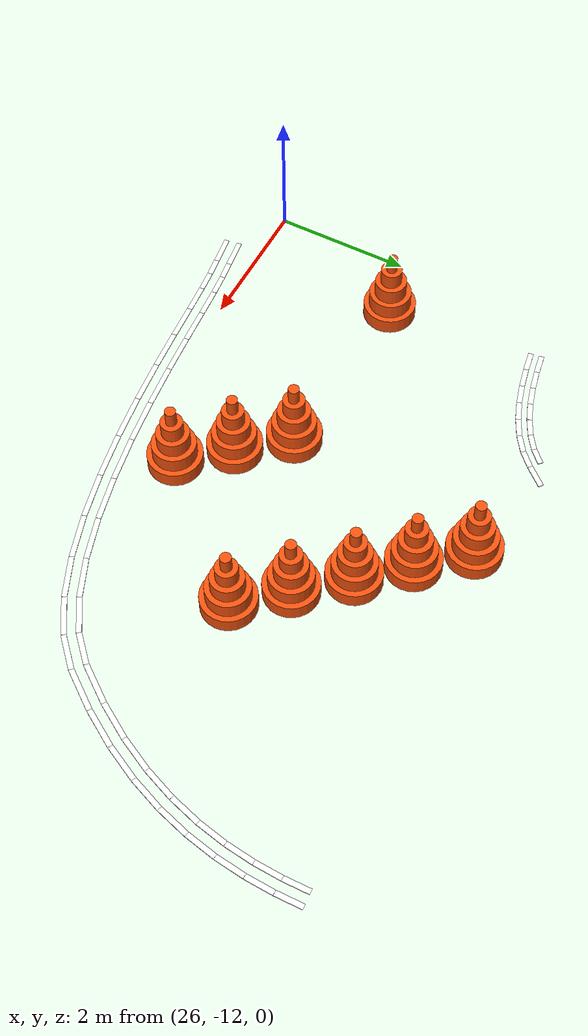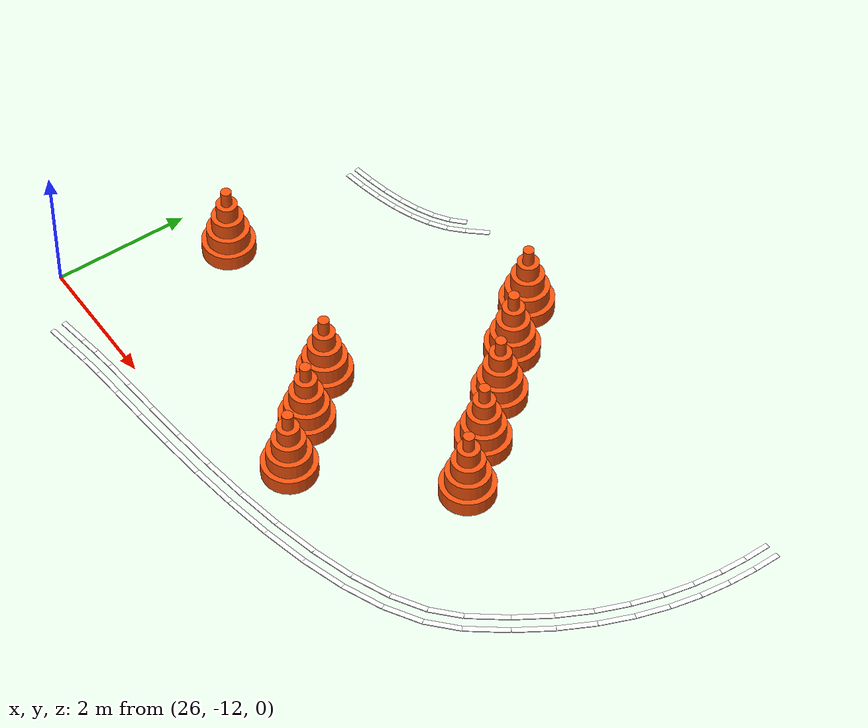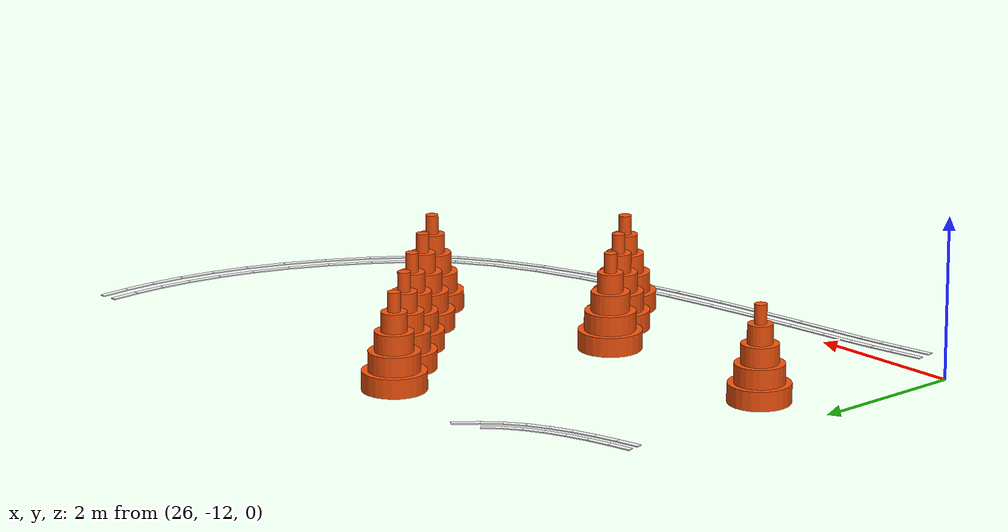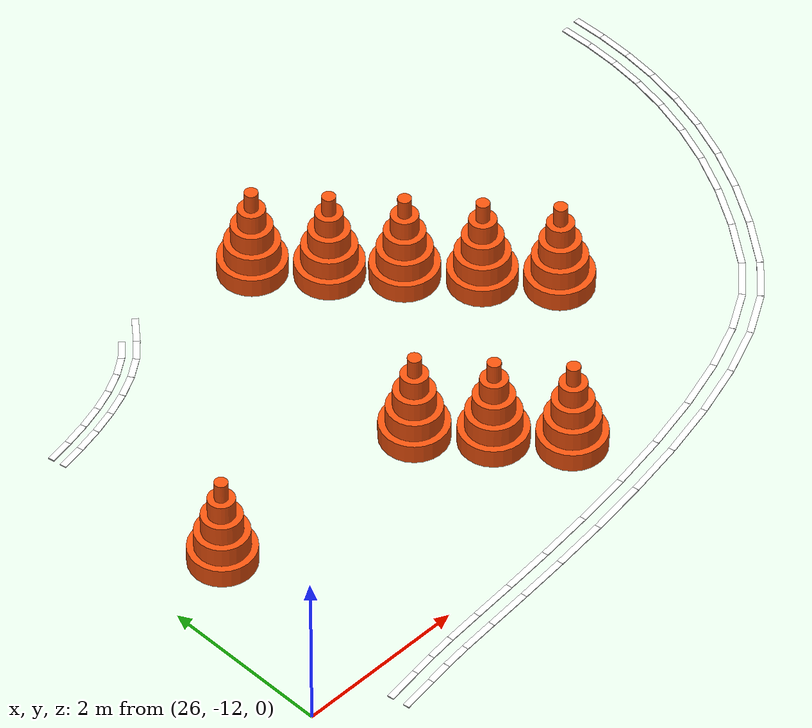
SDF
<sdf version="1.9">
 <world name="igvc_competition">
  <model name="Line_001_0358">
   <static>1</static>
   <pose>26.9651 -12.3578 0.011 0 0 0.146994</pose>
   <link name="link">
    <visual name="visual">
     <geometry><box><size>0.4329 0.0762 0.012</size></box></geometry>
     <material>
      <ambient>0.98 0.98 0.98 1</ambient>
      <diffuse>0.98 0.98 0.98 1</diffuse>
      <specular>0.05 0.05 0.05 1</specular>
      <emissive>0.9 0.9 0.9 1</emissive>
     </material>
    </visual>
   </link>
  </model>
  <model name="Line_001_0359">
   <static>1</static>
   <pose>26.9945 -12.5556 0.011 0 0 0.147188</pose>
   <link name="link">
    <visual name="visual">
     <geometry><box><size>0.4330 0.0762 0.012</size></box></geometry>
     <material>
      <ambient>0.98 0.98 0.98 1</ambient>
      <diffuse>0.98 0.98 0.98 1</diffuse>
      <specular>0.05 0.05 0.05 1</specular>
      <emissive>0.9 0.9 0.9 1</emissive>
     </material>
    </visual>
   </link>
  </model>
  <model name="Line_001_0360">
   <static>1</static>
   <pose>27.3156 -12.3058 0.011 0 0 0.147743</pose>
   <link name="link">
    <visual name="visual">
     <geometry><box><size>0.2758 0.0762 0.012</size></box></geometry>
     <material>
      <ambient>0.98 0.98 0.98 1</ambient>
      <diffuse>0.98 0.98 0.98 1</diffuse>
      <specular>0.05 0.05 0.05 1</specular>
      <emissive>0.9 0.9 0.9 1</emissive>
     </material>
    </visual>
   </link>
  </model>
  <model name="Line_001_0361">
   <static>1</static>
   <pose>27.3434 -12.5038 0.011 0 0 0.147656</pose>
   <link name="link">
    <visual name="visual">
     <geometry><box><size>0.2726 0.0762 0.012</size></box></geometry>
     <material>
      <ambient>0.98 0.98 0.98 1</ambient>
      <diffuse>0.98 0.98 0.98 1</diffuse>
      <specular>0.05 0.05 0.05 1</specular>
      <emissive>0.9 0.9 0.9 1</emissive>
     </material>
    </visual>
   </link>
  </model>
  <model name="Line_001_0362">
   <static>1</static>
   <pose>27.6103 -12.2673 0.011 0 0 0.114781</pose>
   <link name="link">
    <visual name="visual">
     <geometry><box><size>0.3187 0.0762 0.012</size></box></geometry>
     <material>
      <ambient>0.98 0.98 0.98 1</ambient>
      <diffuse>0.98 0.98 0.98 1</diffuse>
      <specular>0.05 0.05 0.05 1</specular>
      <emissive>0.9 0.9 0.9 1</emissive>
     </material>
    </visual>
   </link>
  </model>
  <model name="Line_001_0363">
   <static>1</static>
   <pose>27.6335 -12.4658 0.011 0 0 0.115072</pose>
   <link name="link">
    <visual name="visual">
     <geometry><box><size>0.3127 0.0762 0.012</size></box></geometry>
     <material>
      <ambient>0.98 0.98 0.98 1</ambient>
      <diffuse>0.98 0.98 0.98 1</diffuse>
      <specular>0.05 0.05 0.05 1</specular>
      <emissive>0.9 0.9 0.9 1</emissive>
     </material>
    </visual>
   </link>
  </model>
  <model name="Line_001_0364">
   <static>1</static>
   <pose>27.9849 -12.2300 0.011 0 0 0.087616</pose>
   <link name="link">
    <visual name="visual">
     <geometry><box><size>0.4343 0.0762 0.012</size></box></geometry>
     <material>
      <ambient>0.98 0.98 0.98 1</ambient>
      <diffuse>0.98 0.98 0.98 1</diffuse>
      <specular>0.05 0.05 0.05 1</specular>
      <emissive>0.9 0.9 0.9 1</emissive>
     </material>
    </visual>
   </link>
  </model>
  <model name="Line_001_0365">
   <static>1</static>
   <pose>28.0036 -12.4291 0.011 0 0 0.087301</pose>
   <link name="link">
    <visual name="visual">
     <geometry><box><size>0.4312 0.0762 0.012</size></box></geometry>
     <material>
      <ambient>0.98 0.98 0.98 1</ambient>
      <diffuse>0.98 0.98 0.98 1</diffuse>
      <specular>0.05 0.05 0.05 1</specular>
      <emissive>0.9 0.9 0.9 1</emissive>
     </material>
    </visual>
   </link>
  </model>
  <model name="Line_001_0366">
   <static>1</static>
   <pose>28.4640 -12.1886 0.011 0 0 0.084858</pose>
   <link name="link">
    <visual name="visual">
     <geometry><box><size>0.5274 0.0762 0.012</size></box></geometry>
     <material>
      <ambient>0.98 0.98 0.98 1</ambient>
      <diffuse>0.98 0.98 0.98 1</diffuse>
      <specular>0.05 0.05 0.05 1</specular>
      <emissive>0.9 0.9 0.9 1</emissive>
     </material>
    </visual>
   </link>
  </model>
  <model name="Line_001_0367">
   <static>1</static>
   <pose>28.4815 -12.3879 0.011 0 0 0.084918</pose>
   <link name="link">
    <visual name="visual">
     <geometry><box><size>0.5282 0.0762 0.012</size></box></geometry>
     <material>
      <ambient>0.98 0.98 0.98 1</ambient>
      <diffuse>0.98 0.98 0.98 1</diffuse>
      <specular>0.05 0.05 0.05 1</specular>
      <emissive>0.9 0.9 0.9 1</emissive>
     </material>
    </visual>
   </link>
  </model>
  <model name="Line_001_0368">
   <static>1</static>
   <pose>29.0251 -12.1380 0.011 0 0 0.094572</pose>
   <link name="link">
    <visual name="visual">
     <geometry><box><size>0.5994 0.0762 0.012</size></box></geometry>
     <material>
      <ambient>0.98 0.98 0.98 1</ambient>
      <diffuse>0.98 0.98 0.98 1</diffuse>
      <specular>0.05 0.05 0.05 1</specular>
      <emissive>0.9 0.9 0.9 1</emissive>
     </material>
    </visual>
   </link>
  </model>
  <model name="Line_001_0369">
   <static>1</static>
   <pose>29.0445 -12.3371 0.011 0 0 0.094629</pose>
   <link name="link">
    <visual name="visual">
     <geometry><box><size>0.6022 0.0762 0.012</size></box></geometry>
     <material>
      <ambient>0.98 0.98 0.98 1</ambient>
      <diffuse>0.98 0.98 0.98 1</diffuse>
      <specular>0.05 0.05 0.05 1</specular>
      <emissive>0.9 0.9 0.9 1</emissive>
     </material>
    </visual>
   </link>
  </model>
  <model name="Line_001_0370">
   <static>1</static>
   <pose>29.6459 -12.0727 0.011 0 0 0.114059</pose>
   <link name="link">
    <visual name="visual">
     <geometry><box><size>0.6493 0.0762 0.012</size></box></geometry>
     <material>
      <ambient>0.98 0.98 0.98 1</ambient>
      <diffuse>0.98 0.98 0.98 1</diffuse>
      <specular>0.05 0.05 0.05 1</specular>
      <emissive>0.9 0.9 0.9 1</emissive>
     </material>
    </visual>
   </link>
  </model>
  <model name="Line_001_0371">
   <static>1</static>
   <pose>29.6692 -12.2713 0.011 0 0 0.114135</pose>
   <link name="link">
    <visual name="visual">
     <geometry><box><size>0.6542 0.0762 0.012</size></box></geometry>
     <material>
      <ambient>0.98 0.98 0.98 1</ambient>
      <diffuse>0.98 0.98 0.98 1</diffuse>
      <specular>0.05 0.05 0.05 1</specular>
      <emissive>0.9 0.9 0.9 1</emissive>
     </material>
    </visual>
   </link>
  </model>
  <model name="Line_001_0372">
   <static>1</static>
   <pose>30.3040 -11.9877 0.011 0 0 0.142544</pose>
   <link name="link">
    <visual name="visual">
     <geometry><box><size>0.6779 0.0762 0.012</size></box></geometry>
     <material>
      <ambient>0.98 0.98 0.98 1</ambient>
      <diffuse>0.98 0.98 0.98 1</diffuse>
      <specular>0.05 0.05 0.05 1</specular>
      <emissive>0.9 0.9 0.9 1</emissive>
     </material>
    </visual>
   </link>
  </model>
  <model name="Line_001_0373">
   <static>1</static>
   <pose>30.3329 -12.1855 0.011 0 0 0.142476</pose>
   <link name="link">
    <visual name="visual">
     <geometry><box><size>0.6845 0.0762 0.012</size></box></geometry>
     <material>
      <ambient>0.98 0.98 0.98 1</ambient>
      <diffuse>0.98 0.98 0.98 1</diffuse>
      <specular>0.05 0.05 0.05 1</specular>
      <emissive>0.9 0.9 0.9 1</emissive>
     </material>
    </visual>
   </link>
  </model>
  <model name="Line_001_0374">
   <static>1</static>
   <pose>30.9764 -11.8776 0.011 0 0 0.181707</pose>
   <link name="link">
    <visual name="visual">
     <geometry><box><size>0.6851 0.0762 0.012</size></box></geometry>
     <material>
      <ambient>0.98 0.98 0.98 1</ambient>
      <diffuse>0.98 0.98 0.98 1</diffuse>
      <specular>0.05 0.05 0.05 1</specular>
      <emissive>0.9 0.9 0.9 1</emissive>
     </material>
    </visual>
   </link>
  </model>
  <model name="Line_001_0375">
   <static>1</static>
   <pose>31.0132 -12.0741 0.011 0 0 0.181747</pose>
   <link name="link">
    <visual name="visual">
     <geometry><box><size>0.6943 0.0762 0.012</size></box></geometry>
     <material>
      <ambient>0.98 0.98 0.98 1</ambient>
      <diffuse>0.98 0.98 0.98 1</diffuse>
      <specular>0.05 0.05 0.05 1</specular>
      <emissive>0.9 0.9 0.9 1</emissive>
     </material>
    </visual>
   </link>
  </model>
  <model name="Line_001_0376">
   <static>1</static>
   <pose>31.6401 -11.7376 0.011 0 0 0.234550</pose>
   <link name="link">
    <visual name="visual">
     <geometry><box><size>0.6721 0.0762 0.012</size></box></geometry>
     <material>
      <ambient>0.98 0.98 0.98 1</ambient>
      <diffuse>0.98 0.98 0.98 1</diffuse>
      <specular>0.05 0.05 0.05 1</specular>
      <emissive>0.9 0.9 0.9 1</emissive>
     </material>
    </visual>
   </link>
  </model>
  <model name="Line_001_0377">
   <static>1</static>
   <pose>31.6876 -11.9318 0.011 0 0 0.234670</pose>
   <link name="link">
    <visual name="visual">
     <geometry><box><size>0.6847 0.0762 0.012</size></box></geometry>
     <material>
      <ambient>0.98 0.98 0.98 1</ambient>
      <diffuse>0.98 0.98 0.98 1</diffuse>
      <specular>0.05 0.05 0.05 1</specular>
      <emissive>0.9 0.9 0.9 1</emissive>
     </material>
    </visual>
   </link>
  </model>
  <model name="Line_001_0378">
   <static>1</static>
   <pose>32.2721 -11.5628 0.011 0 0 0.306977</pose>
   <link name="link">
    <visual name="visual">
     <geometry><box><size>0.6400 0.0762 0.012</size></box></geometry>
     <material>
      <ambient>0.98 0.98 0.98 1</ambient>
      <diffuse>0.98 0.98 0.98 1</diffuse>
      <specular>0.05 0.05 0.05 1</specular>
      <emissive>0.9 0.9 0.9 1</emissive>
     </material>
    </visual>
   </link>
  </model>
  <model name="Line_001_0379">
   <static>1</static>
   <pose>32.3338 -11.7528 0.011 0 0 0.307078</pose>
   <link name="link">
    <visual name="visual">
     <geometry><box><size>0.6574 0.0762 0.012</size></box></geometry>
     <material>
      <ambient>0.98 0.98 0.98 1</ambient>
      <diffuse>0.98 0.98 0.98 1</diffuse>
      <specular>0.05 0.05 0.05 1</specular>
      <emissive>0.9 0.9 0.9 1</emissive>
     </material>
    </visual>
   </link>
  </model>
  <model name="Line_001_0380">
   <static>1</static>
   <pose>32.8487 -11.3488 0.011 0 0 0.407621</pose>
   <link name="link">
    <visual name="visual">
     <geometry><box><size>0.5918 0.0762 0.012</size></box></geometry>
     <material>
      <ambient>0.98 0.98 0.98 1</ambient>
      <diffuse>0.98 0.98 0.98 1</diffuse>
      <specular>0.05 0.05 0.05 1</specular>
      <emissive>0.9 0.9 0.9 1</emissive>
     </material>
    </visual>
   </link>
  </model>
  <model name="Line_001_0381">
   <static>1</static>
   <pose>32.9300 -11.5312 0.011 0 0 0.408258</pose>
   <link name="link">
    <visual name="visual">
     <geometry><box><size>0.6164 0.0762 0.012</size></box></geometry>
     <material>
      <ambient>0.98 0.98 0.98 1</ambient>
      <diffuse>0.98 0.98 0.98 1</diffuse>
      <specular>0.05 0.05 0.05 1</specular>
      <emissive>0.9 0.9 0.9 1</emissive>
     </material>
    </visual>
   </link>
  </model>
  <model name="Line_001_0382">
   <static>1</static>
   <pose>33.3468 -11.0920 0.011 0 0 0.552222</pose>
   <link name="link">
    <visual name="visual">
     <geometry><box><size>0.5319 0.0762 0.012</size></box></geometry>
     <material>
      <ambient>0.98 0.98 0.98 1</ambient>
      <diffuse>0.98 0.98 0.98 1</diffuse>
      <specular>0.05 0.05 0.05 1</specular>
      <emissive>0.9 0.9 0.9 1</emissive>
     </material>
    </visual>
   </link>
  </model>
  <model name="Line_001_0383">
   <static>1</static>
   <pose>33.4541 -11.2598 0.011 0 0 0.553180</pose>
   <link name="link">
    <visual name="visual">
     <geometry><box><size>0.5672 0.0762 0.012</size></box></geometry>
     <material>
      <ambient>0.98 0.98 0.98 1</ambient>
      <diffuse>0.98 0.98 0.98 1</diffuse>
      <specular>0.05 0.05 0.05 1</specular>
      <emissive>0.9 0.9 0.9 1</emissive>
     </material>
    </visual>
   </link>
  </model>
  <model name="Line_001_0384">
   <static>1</static>
   <pose>33.7453 -10.7879 0.011 0 0 0.763279</pose>
   <link name="link">
    <visual name="visual">
     <geometry><box><size>0.4764 0.0762 0.012</size></box></geometry>
     <material>
      <ambient>0.98 0.98 0.98 1</ambient>
      <diffuse>0.98 0.98 0.98 1</diffuse>
      <specular>0.05 0.05 0.05 1</specular>
      <emissive>0.9 0.9 0.9 1</emissive>
     </material>
    </visual>
   </link>
  </model>
  <model name="Line_001_0385">
   <static>1</static>
   <pose>33.8816 -10.9329 0.011 0 0 0.762466</pose>
   <link name="link">
    <visual name="visual">
     <geometry><box><size>0.5150 0.0762 0.012</size></box></geometry>
     <material>
      <ambient>0.98 0.98 0.98 1</ambient>
      <diffuse>0.98 0.98 0.98 1</diffuse>
      <specular>0.05 0.05 0.05 1</specular>
      <emissive>0.9 0.9 0.9 1</emissive>
     </material>
    </visual>
   </link>
  </model>
  <model name="Line_001_0386">
   <static>1</static>
   <pose>34.0956 -10.3794 0.011 0 0 0.939712</pose>
   <link name="link">
    <visual name="visual">
     <geometry><box><size>0.6040 0.0762 0.012</size></box></geometry>
     <material>
      <ambient>0.98 0.98 0.98 1</ambient>
      <diffuse>0.98 0.98 0.98 1</diffuse>
      <specular>0.05 0.05 0.05 1</specular>
      <emissive>0.9 0.9 0.9 1</emissive>
     </material>
    </visual>
   </link>
  </model>
  <model name="Line_001_0387">
   <static>1</static>
   <pose>34.2540 -10.5008 0.011 0 0 0.938875</pose>
   <link name="link">
    <visual name="visual">
     <geometry><box><size>0.6304 0.0762 0.012</size></box></geometry>
     <material>
      <ambient>0.98 0.98 0.98 1</ambient>
      <diffuse>0.98 0.98 0.98 1</diffuse>
      <specular>0.05 0.05 0.05 1</specular>
      <emissive>0.9 0.9 0.9 1</emissive>
     </material>
    </visual>
   </link>
  </model>
  <model name="Line_001_0388">
   <static>1</static>
   <pose>34.4191 -9.8954 0.011 0 0 1.026588</pose>
   <link name="link">
    <visual name="visual">
     <geometry><box><size>0.5613 0.0762 0.012</size></box></geometry>
     <material>
      <ambient>0.98 0.98 0.98 1</ambient>
      <diffuse>0.98 0.98 0.98 1</diffuse>
      <specular>0.05 0.05 0.05 1</specular>
      <emissive>0.9 0.9 0.9 1</emissive>
     </material>
    </visual>
   </link>
  </model>
  <model name="Line_001_0389">
   <static>1</static>
   <pose>34.5901 -9.9987 0.011 0 0 1.026586</pose>
   <link name="link">
    <visual name="visual">
     <geometry><box><size>0.5791 0.0762 0.012</size></box></geometry>
     <material>
      <ambient>0.98 0.98 0.98 1</ambient>
      <diffuse>0.98 0.98 0.98 1</diffuse>
      <specular>0.05 0.05 0.05 1</specular>
      <emissive>0.9 0.9 0.9 1</emissive>
     </material>
    </visual>
   </link>
  </model>
  <model name="Line_001_0390">
   <static>1</static>
   <pose>34.6786 -9.4213 0.011 0 0 1.117024</pose>
   <link name="link">
    <visual name="visual">
     <geometry><box><size>0.5208 0.0762 0.012</size></box></geometry>
     <material>
      <ambient>0.98 0.98 0.98 1</ambient>
      <diffuse>0.98 0.98 0.98 1</diffuse>
      <specular>0.05 0.05 0.05 1</specular>
      <emissive>0.9 0.9 0.9 1</emissive>
     </material>
    </visual>
   </link>
  </model>
  <model name="Line_001_0391">
   <static>1</static>
   <pose>34.8582 -9.5088 0.011 0 0 1.116940</pose>
   <link name="link">
    <visual name="visual">
     <geometry><box><size>0.5390 0.0762 0.012</size></box></geometry>
     <material>
      <ambient>0.98 0.98 0.98 1</ambient>
      <diffuse>0.98 0.98 0.98 1</diffuse>
      <specular>0.05 0.05 0.05 1</specular>
      <emissive>0.9 0.9 0.9 1</emissive>
     </material>
    </visual>
   </link>
  </model>
  <model name="Line_001_0392">
   <static>1</static>
   <pose>34.8789 -8.9597 0.011 0 0 1.208610</pose>
   <link name="link">
    <visual name="visual">
     <geometry><box><size>0.4866 0.0762 0.012</size></box></geometry>
     <material>
      <ambient>0.98 0.98 0.98 1</ambient>
      <diffuse>0.98 0.98 0.98 1</diffuse>
      <specular>0.05 0.05 0.05 1</specular>
      <emissive>0.9 0.9 0.9 1</emissive>
     </material>
    </visual>
   </link>
  </model>
  <model name="Line_001_0393">
   <static>1</static>
   <pose>35.0658 -9.0305 0.011 0 0 1.208571</pose>
   <link name="link">
    <visual name="visual">
     <geometry><box><size>0.5049 0.0762 0.012</size></box></geometry>
     <material>
      <ambient>0.98 0.98 0.98 1</ambient>
      <diffuse>0.98 0.98 0.98 1</diffuse>
      <specular>0.05 0.05 0.05 1</specular>
      <emissive>0.9 0.9 0.9 1</emissive>
     </material>
    </visual>
   </link>
  </model>
  <model name="Line_001_0394">
   <static>1</static>
   <pose>35.0266 -8.5116 0.011 0 0 1.298915</pose>
   <link name="link">
    <visual name="visual">
     <geometry><box><size>0.4580 0.0762 0.012</size></box></geometry>
     <material>
      <ambient>0.98 0.98 0.98 1</ambient>
      <diffuse>0.98 0.98 0.98 1</diffuse>
      <specular>0.05 0.05 0.05 1</specular>
      <emissive>0.9 0.9 0.9 1</emissive>
     </material>
    </visual>
   </link>
  </model>
  <model name="Line_001_0395">
   <static>1</static>
   <pose>35.2190 -8.5654 0.011 0 0 1.298938</pose>
   <link name="link">
    <visual name="visual">
     <geometry><box><size>0.4756 0.0762 0.012</size></box></geometry>
     <material>
      <ambient>0.98 0.98 0.98 1</ambient>
      <diffuse>0.98 0.98 0.98 1</diffuse>
      <specular>0.05 0.05 0.05 1</specular>
      <emissive>0.9 0.9 0.9 1</emissive>
     </material>
    </visual>
   </link>
  </model>
  <model name="Line_001_0396">
   <static>1</static>
   <pose>35.1281 -8.0778 0.011 0 0 1.385519</pose>
   <link name="link">
    <visual name="visual">
     <geometry><box><size>0.4337 0.0762 0.012</size></box></geometry>
     <material>
      <ambient>0.98 0.98 0.98 1</ambient>
      <diffuse>0.98 0.98 0.98 1</diffuse>
      <specular>0.05 0.05 0.05 1</specular>
      <emissive>0.9 0.9 0.9 1</emissive>
     </material>
    </visual>
   </link>
  </model>
  <model name="Line_001_0397">
   <static>1</static>
   <pose>35.3244 -8.1150 0.011 0 0 1.385544</pose>
   <link name="link">
    <visual name="visual">
     <geometry><box><size>0.4506 0.0762 0.012</size></box></geometry>
     <material>
      <ambient>0.98 0.98 0.98 1</ambient>
      <diffuse>0.98 0.98 0.98 1</diffuse>
      <specular>0.05 0.05 0.05 1</specular>
      <emissive>0.9 0.9 0.9 1</emissive>
     </material>
    </visual>
   </link>
  </model>
  <model name="Line_001_0398">
   <static>1</static>
   <pose>35.1894 -7.6593 0.011 0 0 1.466959</pose>
   <link name="link">
    <visual name="visual">
     <geometry><box><size>0.4129 0.0762 0.012</size></box></geometry>
     <material>
      <ambient>0.98 0.98 0.98 1</ambient>
      <diffuse>0.98 0.98 0.98 1</diffuse>
      <specular>0.05 0.05 0.05 1</specular>
      <emissive>0.9 0.9 0.9 1</emissive>
     </material>
    </visual>
   </link>
  </model>
  <model name="Line_001_0399">
   <static>1</static>
   <pose>35.3882 -7.6805 0.011 0 0 1.466738</pose>
   <link name="link">
    <visual name="visual">
     <geometry><box><size>0.4284 0.0762 0.012</size></box></geometry>
     <material>
      <ambient>0.98 0.98 0.98 1</ambient>
      <diffuse>0.98 0.98 0.98 1</diffuse>
      <specular>0.05 0.05 0.05 1</specular>
      <emissive>0.9 0.9 0.9 1</emissive>
     </material>
    </visual>
   </link>
  </model>
  <model name="Line_001_0400">
   <static>1</static>
   <pose>35.2169 -7.2569 0.011 0 0 1.540111</pose>
   <link name="link">
    <visual name="visual">
     <geometry><box><size>0.3944 0.0762 0.012</size></box></geometry>
     <material>
      <ambient>0.98 0.98 0.98 1</ambient>
      <diffuse>0.98 0.98 0.98 1</diffuse>
      <specular>0.05 0.05 0.05 1</specular>
      <emissive>0.9 0.9 0.9 1</emissive>
     </material>
    </visual>
   </link>
  </model>
  <model name="Line_001_0401">
   <static>1</static>
   <pose>35.4167 -7.2635 0.011 0 0 1.540154</pose>
   <link name="link">
    <visual name="visual">
     <geometry><box><size>0.4080 0.0762 0.012</size></box></geometry>
     <material>
      <ambient>0.98 0.98 0.98 1</ambient>
      <diffuse>0.98 0.98 0.98 1</diffuse>
      <specular>0.05 0.05 0.05 1</specular>
      <emissive>0.9 0.9 0.9 1</emissive>
     </material>
    </visual>
   </link>
  </model>
  <model name="Line_001_0402">
   <static>1</static>
   <pose>35.2166 -6.8716 0.011 0 0 1.604250</pose>
   <link name="link">
    <visual name="visual">
     <geometry><box><size>0.3767 0.0762 0.012</size></box></geometry>
     <material>
      <ambient>0.98 0.98 0.98 1</ambient>
      <diffuse>0.98 0.98 0.98 1</diffuse>
      <specular>0.05 0.05 0.05 1</specular>
      <emissive>0.9 0.9 0.9 1</emissive>
     </material>
    </visual>
   </link>
  </model>
  <model name="Line_001_0403">
   <static>1</static>
   <pose>35.4164 -6.8654 0.011 0 0 1.604006</pose>
   <link name="link">
    <visual name="visual">
     <geometry><box><size>0.3885 0.0762 0.012</size></box></geometry>
     <material>
      <ambient>0.98 0.98 0.98 1</ambient>
      <diffuse>0.98 0.98 0.98 1</diffuse>
      <specular>0.05 0.05 0.05 1</specular>
      <emissive>0.9 0.9 0.9 1</emissive>
     </material>
    </visual>
   </link>
  </model>
  <model name="Line_002_0372">
   <static>1</static>
   <pose>26.7473 -7.4169 0.011 0 0 0.172824</pose>
   <link name="link">
    <visual name="visual">
     <geometry><box><size>0.2977 0.0762 0.012</size></box></geometry>
     <material>
      <ambient>0.98 0.98 0.98 1</ambient>
      <diffuse>0.98 0.98 0.98 1</diffuse>
      <specular>0.05 0.05 0.05 1</specular>
      <emissive>0.9 0.9 0.9 1</emissive>
     </material>
    </visual>
   </link>
  </model>
  <model name="Line_002_0373">
   <static>1</static>
   <pose>26.7751 -7.5724 0.011 0 0 0.172979</pose>
   <link name="link">
    <visual name="visual">
     <geometry><box><size>0.3044 0.0762 0.012</size></box></geometry>
     <material>
      <ambient>0.98 0.98 0.98 1</ambient>
      <diffuse>0.98 0.98 0.98 1</diffuse>
      <specular>0.05 0.05 0.05 1</specular>
      <emissive>0.9 0.9 0.9 1</emissive>
     </material>
    </visual>
   </link>
  </model>
  <model name="Line_002_0374">
   <static>1</static>
   <pose>27.0382 -7.3590 0.011 0 0 0.219879</pose>
   <link name="link">
    <visual name="visual">
     <geometry><box><size>0.2957 0.0762 0.012</size></box></geometry>
     <material>
      <ambient>0.98 0.98 0.98 1</ambient>
      <diffuse>0.98 0.98 0.98 1</diffuse>
      <specular>0.05 0.05 0.05 1</specular>
      <emissive>0.9 0.9 0.9 1</emissive>
     </material>
    </visual>
   </link>
  </model>
  <model name="Line_002_0375">
   <static>1</static>
   <pose>27.0739 -7.5130 0.011 0 0 0.219771</pose>
   <link name="link">
    <visual name="visual">
     <geometry><box><size>0.3050 0.0762 0.012</size></box></geometry>
     <material>
      <ambient>0.98 0.98 0.98 1</ambient>
      <diffuse>0.98 0.98 0.98 1</diffuse>
      <specular>0.05 0.05 0.05 1</specular>
      <emissive>0.9 0.9 0.9 1</emissive>
     </material>
    </visual>
   </link>
  </model>
  <model name="Line_002_0376">
   <static>1</static>
   <pose>27.3212 -7.2866 0.011 0 0 0.282104</pose>
   <link name="link">
    <visual name="visual">
     <geometry><box><size>0.2888 0.0762 0.012</size></box></geometry>
     <material>
      <ambient>0.98 0.98 0.98 1</ambient>
      <diffuse>0.98 0.98 0.98 1</diffuse>
      <specular>0.05 0.05 0.05 1</specular>
      <emissive>0.9 0.9 0.9 1</emissive>
     </material>
    </visual>
   </link>
  </model>
  <model name="Line_002_0377">
   <static>1</static>
   <pose>27.3672 -7.4378 0.011 0 0 0.282452</pose>
   <link name="link">
    <visual name="visual">
     <geometry><box><size>0.3010 0.0762 0.012</size></box></geometry>
     <material>
      <ambient>0.98 0.98 0.98 1</ambient>
      <diffuse>0.98 0.98 0.98 1</diffuse>
      <specular>0.05 0.05 0.05 1</specular>
      <emissive>0.9 0.9 0.9 1</emissive>
     </material>
    </visual>
   </link>
  </model>
  <model name="Line_002_0378">
   <static>1</static>
   <pose>27.5898 -7.1969 0.011 0 0 0.364203</pose>
   <link name="link">
    <visual name="visual">
     <geometry><box><size>0.2779 0.0762 0.012</size></box></geometry>
     <material>
      <ambient>0.98 0.98 0.98 1</ambient>
      <diffuse>0.98 0.98 0.98 1</diffuse>
      <specular>0.05 0.05 0.05 1</specular>
      <emissive>0.9 0.9 0.9 1</emissive>
     </material>
    </visual>
   </link>
  </model>
  <model name="Line_002_0379">
   <static>1</static>
   <pose>27.6490 -7.3435 0.011 0 0 0.364509</pose>
   <link name="link">
    <visual name="visual">
     <geometry><box><size>0.2937 0.0762 0.012</size></box></geometry>
     <material>
      <ambient>0.98 0.98 0.98 1</ambient>
      <diffuse>0.98 0.98 0.98 1</diffuse>
      <specular>0.05 0.05 0.05 1</specular>
      <emissive>0.9 0.9 0.9 1</emissive>
     </material>
    </visual>
   </link>
  </model>
  <model name="Line_002_0380">
   <static>1</static>
   <pose>27.8372 -7.0876 0.011 0 0 0.470593</pose>
   <link name="link">
    <visual name="visual">
     <geometry><box><size>0.2640 0.0762 0.012</size></box></geometry>
     <material>
      <ambient>0.98 0.98 0.98 1</ambient>
      <diffuse>0.98 0.98 0.98 1</diffuse>
      <specular>0.05 0.05 0.05 1</specular>
      <emissive>0.9 0.9 0.9 1</emissive>
     </material>
    </visual>
   </link>
  </model>
  <model name="Line_002_0381">
   <static>1</static>
   <pose>27.9129 -7.2265 0.011 0 0 0.471196</pose>
   <link name="link">
    <visual name="visual">
     <geometry><box><size>0.2844 0.0762 0.012</size></box></geometry>
     <material>
      <ambient>0.98 0.98 0.98 1</ambient>
      <diffuse>0.98 0.98 0.98 1</diffuse>
      <specular>0.05 0.05 0.05 1</specular>
      <emissive>0.9 0.9 0.9 1</emissive>
     </material>
    </visual>
   </link>
  </model>
  <model name="Line_002_0382">
   <static>1</static>
   <pose>28.0573 -6.9564 0.011 0 0 0.608560</pose>
   <link name="link">
    <visual name="visual">
     <geometry><box><size>0.2496 0.0762 0.012</size></box></geometry>
     <material>
      <ambient>0.98 0.98 0.98 1</ambient>
      <diffuse>0.98 0.98 0.98 1</diffuse>
      <specular>0.05 0.05 0.05 1</specular>
      <emissive>0.9 0.9 0.9 1</emissive>
     </material>
    </visual>
   </link>
  </model>
  <model name="Line_002_0383">
   <static>1</static>
   <pose>28.1525 -7.0832 0.011 0 0 0.609357</pose>
   <link name="link">
    <visual name="visual">
     <geometry><box><size>0.2754 0.0762 0.012</size></box></geometry>
     <material>
      <ambient>0.98 0.98 0.98 1</ambient>
      <diffuse>0.98 0.98 0.98 1</diffuse>
      <specular>0.05 0.05 0.05 1</specular>
      <emissive>0.9 0.9 0.9 1</emissive>
     </material>
    </visual>
   </link>
  </model>
  <model name="Line_002_0384">
   <static>1</static>
   <pose>28.2459 -6.7992 0.011 0 0 0.783071</pose>
   <link name="link">
    <visual name="visual">
     <geometry><box><size>0.2431 0.0762 0.012</size></box></geometry>
     <material>
      <ambient>0.98 0.98 0.98 1</ambient>
      <diffuse>0.98 0.98 0.98 1</diffuse>
      <specular>0.05 0.05 0.05 1</specular>
      <emissive>0.9 0.9 0.9 1</emissive>
     </material>
    </visual>
   </link>
  </model>
  <model name="Line_002_0385">
   <static>1</static>
   <pose>28.3592 -6.9114 0.011 0 0 0.781116</pose>
   <link name="link">
    <visual name="visual">
     <geometry><box><size>0.2642 0.0762 0.012</size></box></geometry>
     <material>
      <ambient>0.98 0.98 0.98 1</ambient>
      <diffuse>0.98 0.98 0.98 1</diffuse>
      <specular>0.05 0.05 0.05 1</specular>
      <emissive>0.9 0.9 0.9 1</emissive>
     </material>
    </visual>
   </link>
  </model>
  <model name="Line_002_0387">
   <static>1</static>
   <pose>28.5641 -6.6879 0.011 0 0 0.865524</pose>
   <link name="link">
    <visual name="visual">
     <geometry><box><size>0.3428 0.0762 0.012</size></box></geometry>
     <material>
      <ambient>0.98 0.98 0.98 1</ambient>
      <diffuse>0.98 0.98 0.98 1</diffuse>
      <specular>0.05 0.05 0.05 1</specular>
      <emissive>0.9 0.9 0.9 1</emissive>
     </material>
    </visual>
   </link>
  </model>
  <model name="Cones_045">
   <static>1</static>
   <pose>26.8798 -9.7719 0 0 0 0</pose>
   <link name="link">
    <collision name="collision">
     <pose>0 0 0.5985 0 0 0</pose>
     <geometry><cylinder><radius>0.3831</radius><length>1.1969</length></cylinder></geometry>
    </collision>
    <visual name="visual_0">
     <pose>0 0 0.1197 0 0 0</pose>
     <geometry><cylinder><radius>0.3831</radius><length>0.2394</length></cylinder></geometry>
     <material>
      <ambient>0.95 0.32 0.05 1.0</ambient>
      <diffuse>0.95 0.32 0.05 1.0</diffuse>
      <specular>0.05 0.05 0.05 1</specular>
     </material>
    </visual>
    <visual name="visual_1">
     <pose>0 0 0.3591 0 0 0</pose>
     <geometry><cylinder><radius>0.3065</radius><length>0.2394</length></cylinder></geometry>
     <material>
      <ambient>0.95 0.32 0.05 1.0</ambient>
      <diffuse>0.95 0.32 0.05 1.0</diffuse>
      <specular>0.05 0.05 0.05 1</specular>
     </material>
    </visual>
    <visual name="visual_2">
     <pose>0 0 0.5985 0 0 0</pose>
     <geometry><cylinder><radius>0.2299</radius><length>0.2394</length></cylinder></geometry>
     <material>
      <ambient>0.95 0.32 0.05 1.0</ambient>
      <diffuse>0.95 0.32 0.05 1.0</diffuse>
      <specular>0.05 0.05 0.05 1</specular>
     </material>
    </visual>
    <visual name="visual_3">
     <pose>0 0 0.8378 0 0 0</pose>
     <geometry><cylinder><radius>0.1532</radius><length>0.2394</length></cylinder></geometry>
     <material>
      <ambient>0.95 0.32 0.05 1.0</ambient>
      <diffuse>0.95 0.32 0.05 1.0</diffuse>
      <specular>0.05 0.05 0.05 1</specular>
     </material>
    </visual>
    <visual name="visual_4">
     <pose>0 0 1.0772 0 0 0</pose>
     <geometry><cylinder><radius>0.0766</radius><length>0.2394</length></cylinder></geometry>
     <material>
      <ambient>0.95 0.32 0.05 1.0</ambient>
      <diffuse>0.95 0.32 0.05 1.0</diffuse>
      <specular>0.05 0.05 0.05 1</specular>
     </material>
    </visual>
   </link>
  </model>
  <model name="Cones_046">
   <static>1</static>
   <pose>30.6713 -11.2002 0 0 0 0</pose>
   <link name="link">
    <collision name="collision">
     <pose>0 0 0.5985 0 0 0</pose>
     <geometry><cylinder><radius>0.3939</radius><length>1.1969</length></cylinder></geometry>
    </collision>
    <visual name="visual_0">
     <pose>0 0 0.1197 0 0 0</pose>
     <geometry><cylinder><radius>0.3939</radius><length>0.2394</length></cylinder></geometry>
     <material>
      <ambient>0.95 0.32 0.05 1.0</ambient>
      <diffuse>0.95 0.32 0.05 1.0</diffuse>
      <specular>0.05 0.05 0.05 1</specular>
     </material>
    </visual>
    <visual name="visual_1">
     <pose>0 0 0.3591 0 0 0</pose>
     <geometry><cylinder><radius>0.3151</radius><length>0.2394</length></cylinder></geometry>
     <material>
      <ambient>0.95 0.32 0.05 1.0</ambient>
      <diffuse>0.95 0.32 0.05 1.0</diffuse>
      <specular>0.05 0.05 0.05 1</specular>
     </material>
    </visual>
    <visual name="visual_2">
     <pose>0 0 0.5985 0 0 0</pose>
     <geometry><cylinder><radius>0.2363</radius><length>0.2394</length></cylinder></geometry>
     <material>
      <ambient>0.95 0.32 0.05 1.0</ambient>
      <diffuse>0.95 0.32 0.05 1.0</diffuse>
      <specular>0.05 0.05 0.05 1</specular>
     </material>
    </visual>
    <visual name="visual_3">
     <pose>0 0 0.8378 0 0 0</pose>
     <geometry><cylinder><radius>0.1576</radius><length>0.2394</length></cylinder></geometry>
     <material>
      <ambient>0.95 0.32 0.05 1.0</ambient>
      <diffuse>0.95 0.32 0.05 1.0</diffuse>
      <specular>0.05 0.05 0.05 1</specular>
     </material>
    </visual>
    <visual name="visual_4">
     <pose>0 0 1.0772 0 0 0</pose>
     <geometry><cylinder><radius>0.0788</radius><length>0.2394</length></cylinder></geometry>
     <material>
      <ambient>0.95 0.32 0.05 1.0</ambient>
      <diffuse>0.95 0.32 0.05 1.0</diffuse>
      <specular>0.05 0.05 0.05 1</specular>
     </material>
    </visual>
   </link>
  </model>
  <model name="Cones_047">
   <static>1</static>
   <pose>30.1208 -10.5673 0 0 0 0</pose>
   <link name="link">
    <collision name="collision">
     <pose>0 0 0.5985 0 0 0</pose>
     <geometry><cylinder><radius>0.3939</radius><length>1.1969</length></cylinder></geometry>
    </collision>
    <visual name="visual_0">
     <pose>0 0 0.1197 0 0 0</pose>
     <geometry><cylinder><radius>0.3939</radius><length>0.2394</length></cylinder></geometry>
     <material>
      <ambient>0.95 0.32 0.05 1.0</ambient>
      <diffuse>0.95 0.32 0.05 1.0</diffuse>
      <specular>0.05 0.05 0.05 1</specular>
     </material>
    </visual>
    <visual name="visual_1">
     <pose>0 0 0.3591 0 0 0</pose>
     <geometry><cylinder><radius>0.3151</radius><length>0.2394</length></cylinder></geometry>
     <material>
      <ambient>0.95 0.32 0.05 1.0</ambient>
      <diffuse>0.95 0.32 0.05 1.0</diffuse>
      <specular>0.05 0.05 0.05 1</specular>
     </material>
    </visual>
    <visual name="visual_2">
     <pose>0 0 0.5985 0 0 0</pose>
     <geometry><cylinder><radius>0.2363</radius><length>0.2394</length></cylinder></geometry>
     <material>
      <ambient>0.95 0.32 0.05 1.0</ambient>
      <diffuse>0.95 0.32 0.05 1.0</diffuse>
      <specular>0.05 0.05 0.05 1</specular>
     </material>
    </visual>
    <visual name="visual_3">
     <pose>0 0 0.8378 0 0 0</pose>
     <geometry><cylinder><radius>0.1576</radius><length>0.2394</length></cylinder></geometry>
     <material>
      <ambient>0.95 0.32 0.05 1.0</ambient>
      <diffuse>0.95 0.32 0.05 1.0</diffuse>
      <specular>0.05 0.05 0.05 1</specular>
     </material>
    </visual>
    <visual name="visual_4">
     <pose>0 0 1.0772 0 0 0</pose>
     <geometry><cylinder><radius>0.0788</radius><length>0.2394</length></cylinder></geometry>
     <material>
      <ambient>0.95 0.32 0.05 1.0</ambient>
      <diffuse>0.95 0.32 0.05 1.0</diffuse>
      <specular>0.05 0.05 0.05 1</specular>
     </material>
    </visual>
   </link>
  </model>
  <model name="Cones_048">
   <static>1</static>
   <pose>29.5751 -9.9221 0 0 0 0</pose>
   <link name="link">
    <collision name="collision">
     <pose>0 0 0.5985 0 0 0</pose>
     <geometry><cylinder><radius>0.3939</radius><length>1.1969</length></cylinder></geometry>
    </collision>
    <visual name="visual_0">
     <pose>0 0 0.1197 0 0 0</pose>
     <geometry><cylinder><radius>0.3939</radius><length>0.2394</length></cylinder></geometry>
     <material>
      <ambient>0.95 0.32 0.05 1.0</ambient>
      <diffuse>0.95 0.32 0.05 1.0</diffuse>
      <specular>0.05 0.05 0.05 1</specular>
     </material>
    </visual>
    <visual name="visual_1">
     <pose>0 0 0.3591 0 0 0</pose>
     <geometry><cylinder><radius>0.3151</radius><length>0.2394</length></cylinder></geometry>
     <material>
      <ambient>0.95 0.32 0.05 1.0</ambient>
      <diffuse>0.95 0.32 0.05 1.0</diffuse>
      <specular>0.05 0.05 0.05 1</specular>
     </material>
    </visual>
    <visual name="visual_2">
     <pose>0 0 0.5985 0 0 0</pose>
     <geometry><cylinder><radius>0.2363</radius><length>0.2394</length></cylinder></geometry>
     <material>
      <ambient>0.95 0.32 0.05 1.0</ambient>
      <diffuse>0.95 0.32 0.05 1.0</diffuse>
      <specular>0.05 0.05 0.05 1</specular>
     </material>
    </visual>
    <visual name="visual_3">
     <pose>0 0 0.8378 0 0 0</pose>
     <geometry><cylinder><radius>0.1576</radius><length>0.2394</length></cylinder></geometry>
     <material>
      <ambient>0.95 0.32 0.05 1.0</ambient>
      <diffuse>0.95 0.32 0.05 1.0</diffuse>
      <specular>0.05 0.05 0.05 1</specular>
     </material>
    </visual>
    <visual name="visual_4">
     <pose>0 0 1.0772 0 0 0</pose>
     <geometry><cylinder><radius>0.0788</radius><length>0.2394</length></cylinder></geometry>
     <material>
      <ambient>0.95 0.32 0.05 1.0</ambient>
      <diffuse>0.95 0.32 0.05 1.0</diffuse>
      <specular>0.05 0.05 0.05 1</specular>
     </material>
    </visual>
   </link>
  </model>
  <model name="Cones_049">
   <static>1</static>
   <pose>30.6414 -7.5595 0 0 0 0</pose>
   <link name="link">
    <collision name="collision">
     <pose>0 0 0.5985 0 0 0</pose>
     <geometry><cylinder><radius>0.3939</radius><length>1.1969</length></cylinder></geometry>
    </collision>
    <visual name="visual_0">
     <pose>0 0 0.1197 0 0 0</pose>
     <geometry><cylinder><radius>0.3939</radius><length>0.2394</length></cylinder></geometry>
     <material>
      <ambient>0.95 0.32 0.05 1.0</ambient>
      <diffuse>0.95 0.32 0.05 1.0</diffuse>
      <specular>0.05 0.05 0.05 1</specular>
     </material>
    </visual>
    <visual name="visual_1">
     <pose>0 0 0.3591 0 0 0</pose>
     <geometry><cylinder><radius>0.3151</radius><length>0.2394</length></cylinder></geometry>
     <material>
      <ambient>0.95 0.32 0.05 1.0</ambient>
      <diffuse>0.95 0.32 0.05 1.0</diffuse>
      <specular>0.05 0.05 0.05 1</specular>
     </material>
    </visual>
    <visual name="visual_2">
     <pose>0 0 0.5985 0 0 0</pose>
     <geometry><cylinder><radius>0.2363</radius><length>0.2394</length></cylinder></geometry>
     <material>
      <ambient>0.95 0.32 0.05 1.0</ambient>
      <diffuse>0.95 0.32 0.05 1.0</diffuse>
      <specular>0.05 0.05 0.05 1</specular>
     </material>
    </visual>
    <visual name="visual_3">
     <pose>0 0 0.8378 0 0 0</pose>
     <geometry><cylinder><radius>0.1576</radius><length>0.2394</length></cylinder></geometry>
     <material>
      <ambient>0.95 0.32 0.05 1.0</ambient>
      <diffuse>0.95 0.32 0.05 1.0</diffuse>
      <specular>0.05 0.05 0.05 1</specular>
     </material>
    </visual>
    <visual name="visual_4">
     <pose>0 0 1.0772 0 0 0</pose>
     <geometry><cylinder><radius>0.0788</radius><length>0.2394</length></cylinder></geometry>
     <material>
      <ambient>0.95 0.32 0.05 1.0</ambient>
      <diffuse>0.95 0.32 0.05 1.0</diffuse>
      <specular>0.05 0.05 0.05 1</specular>
     </material>
    </visual>
   </link>
  </model>
  <model name="Cones_050">
   <static>1</static>
   <pose>30.0909 -6.9266 0 0 0 0</pose>
   <link name="link">
    <collision name="collision">
     <pose>0 0 0.5985 0 0 0</pose>
     <geometry><cylinder><radius>0.3939</radius><length>1.1969</length></cylinder></geometry>
    </collision>
    <visual name="visual_0">
     <pose>0 0 0.1197 0 0 0</pose>
     <geometry><cylinder><radius>0.3939</radius><length>0.2394</length></cylinder></geometry>
     <material>
      <ambient>0.95 0.32 0.05 1.0</ambient>
      <diffuse>0.95 0.32 0.05 1.0</diffuse>
      <specular>0.05 0.05 0.05 1</specular>
     </material>
    </visual>
    <visual name="visual_1">
     <pose>0 0 0.3591 0 0 0</pose>
     <geometry><cylinder><radius>0.3151</radius><length>0.2394</length></cylinder></geometry>
     <material>
      <ambient>0.95 0.32 0.05 1.0</ambient>
      <diffuse>0.95 0.32 0.05 1.0</diffuse>
      <specular>0.05 0.05 0.05 1</specular>
     </material>
    </visual>
    <visual name="visual_2">
     <pose>0 0 0.5985 0 0 0</pose>
     <geometry><cylinder><radius>0.2363</radius><length>0.2394</length></cylinder></geometry>
     <material>
      <ambient>0.95 0.32 0.05 1.0</ambient>
      <diffuse>0.95 0.32 0.05 1.0</diffuse>
      <specular>0.05 0.05 0.05 1</specular>
     </material>
    </visual>
    <visual name="visual_3">
     <pose>0 0 0.8378 0 0 0</pose>
     <geometry><cylinder><radius>0.1576</radius><length>0.2394</length></cylinder></geometry>
     <material>
      <ambient>0.95 0.32 0.05 1.0</ambient>
      <diffuse>0.95 0.32 0.05 1.0</diffuse>
      <specular>0.05 0.05 0.05 1</specular>
     </material>
    </visual>
    <visual name="visual_4">
     <pose>0 0 1.0772 0 0 0</pose>
     <geometry><cylinder><radius>0.0788</radius><length>0.2394</length></cylinder></geometry>
     <material>
      <ambient>0.95 0.32 0.05 1.0</ambient>
      <diffuse>0.95 0.32 0.05 1.0</diffuse>
      <specular>0.05 0.05 0.05 1</specular>
     </material>
    </visual>
   </link>
  </model>
  <model name="Cones_052">
   <static>1</static>
   <pose>32.2895 -9.4392 0 0 0 0</pose>
   <link name="link">
    <collision name="collision">
     <pose>0 0 0.5985 0 0 0</pose>
     <geometry><cylinder><radius>0.3939</radius><length>1.1969</length></cylinder></geometry>
    </collision>
    <visual name="visual_0">
     <pose>0 0 0.1197 0 0 0</pose>
     <geometry><cylinder><radius>0.3939</radius><length>0.2394</length></cylinder></geometry>
     <material>
      <ambient>0.95 0.32 0.05 1.0</ambient>
      <diffuse>0.95 0.32 0.05 1.0</diffuse>
      <specular>0.05 0.05 0.05 1</specular>
     </material>
    </visual>
    <visual name="visual_1">
     <pose>0 0 0.3591 0 0 0</pose>
     <geometry><cylinder><radius>0.3151</radius><length>0.2394</length></cylinder></geometry>
     <material>
      <ambient>0.95 0.32 0.05 1.0</ambient>
      <diffuse>0.95 0.32 0.05 1.0</diffuse>
      <specular>0.05 0.05 0.05 1</specular>
     </material>
    </visual>
    <visual name="visual_2">
     <pose>0 0 0.5985 0 0 0</pose>
     <geometry><cylinder><radius>0.2363</radius><length>0.2394</length></cylinder></geometry>
     <material>
      <ambient>0.95 0.32 0.05 1.0</ambient>
      <diffuse>0.95 0.32 0.05 1.0</diffuse>
      <specular>0.05 0.05 0.05 1</specular>
     </material>
    </visual>
    <visual name="visual_3">
     <pose>0 0 0.8378 0 0 0</pose>
     <geometry><cylinder><radius>0.1576</radius><length>0.2394</length></cylinder></geometry>
     <material>
      <ambient>0.95 0.32 0.05 1.0</ambient>
      <diffuse>0.95 0.32 0.05 1.0</diffuse>
      <specular>0.05 0.05 0.05 1</specular>
     </material>
    </visual>
    <visual name="visual_4">
     <pose>0 0 1.0772 0 0 0</pose>
     <geometry><cylinder><radius>0.0788</radius><length>0.2394</length></cylinder></geometry>
     <material>
      <ambient>0.95 0.32 0.05 1.0</ambient>
      <diffuse>0.95 0.32 0.05 1.0</diffuse>
      <specular>0.05 0.05 0.05 1</specular>
     </material>
    </visual>
   </link>
  </model>
  <model name="Cones_053">
   <static>1</static>
   <pose>31.7390 -8.8063 0 0 0 0</pose>
   <link name="link">
    <collision name="collision">
     <pose>0 0 0.5985 0 0 0</pose>
     <geometry><cylinder><radius>0.3939</radius><length>1.1969</length></cylinder></geometry>
    </collision>
    <visual name="visual_0">
     <pose>0 0 0.1197 0 0 0</pose>
     <geometry><cylinder><radius>0.3939</radius><length>0.2394</length></cylinder></geometry>
     <material>
      <ambient>0.95 0.32 0.05 1.0</ambient>
      <diffuse>0.95 0.32 0.05 1.0</diffuse>
      <specular>0.05 0.05 0.05 1</specular>
     </material>
    </visual>
    <visual name="visual_1">
     <pose>0 0 0.3591 0 0 0</pose>
     <geometry><cylinder><radius>0.3151</radius><length>0.2394</length></cylinder></geometry>
     <material>
      <ambient>0.95 0.32 0.05 1.0</ambient>
      <diffuse>0.95 0.32 0.05 1.0</diffuse>
      <specular>0.05 0.05 0.05 1</specular>
     </material>
    </visual>
    <visual name="visual_2">
     <pose>0 0 0.5985 0 0 0</pose>
     <geometry><cylinder><radius>0.2363</radius><length>0.2394</length></cylinder></geometry>
     <material>
      <ambient>0.95 0.32 0.05 1.0</ambient>
      <diffuse>0.95 0.32 0.05 1.0</diffuse>
      <specular>0.05 0.05 0.05 1</specular>
     </material>
    </visual>
    <visual name="visual_3">
     <pose>0 0 0.8378 0 0 0</pose>
     <geometry><cylinder><radius>0.1576</radius><length>0.2394</length></cylinder></geometry>
     <material>
      <ambient>0.95 0.32 0.05 1.0</ambient>
      <diffuse>0.95 0.32 0.05 1.0</diffuse>
      <specular>0.05 0.05 0.05 1</specular>
     </material>
    </visual>
    <visual name="visual_4">
     <pose>0 0 1.0772 0 0 0</pose>
     <geometry><cylinder><radius>0.0788</radius><length>0.2394</length></cylinder></geometry>
     <material>
      <ambient>0.95 0.32 0.05 1.0</ambient>
      <diffuse>0.95 0.32 0.05 1.0</diffuse>
      <specular>0.05 0.05 0.05 1</specular>
     </material>
    </visual>
   </link>
  </model>
  <model name="Cones_054">
   <static>1</static>
   <pose>31.1934 -8.1611 0 0 0 0</pose>
   <link name="link">
    <collision name="collision">
     <pose>0 0 0.5985 0 0 0</pose>
     <geometry><cylinder><radius>0.3939</radius><length>1.1969</length></cylinder></geometry>
    </collision>
    <visual name="visual_0">
     <pose>0 0 0.1197 0 0 0</pose>
     <geometry><cylinder><radius>0.3939</radius><length>0.2394</length></cylinder></geometry>
     <material>
      <ambient>0.95 0.32 0.05 1.0</ambient>
      <diffuse>0.95 0.32 0.05 1.0</diffuse>
      <specular>0.05 0.05 0.05 1</specular>
     </material>
    </visual>
    <visual name="visual_1">
     <pose>0 0 0.3591 0 0 0</pose>
     <geometry><cylinder><radius>0.3151</radius><length>0.2394</length></cylinder></geometry>
     <material>
      <ambient>0.95 0.32 0.05 1.0</ambient>
      <diffuse>0.95 0.32 0.05 1.0</diffuse>
      <specular>0.05 0.05 0.05 1</specular>
     </material>
    </visual>
    <visual name="visual_2">
     <pose>0 0 0.5985 0 0 0</pose>
     <geometry><cylinder><radius>0.2363</radius><length>0.2394</length></cylinder></geometry>
     <material>
      <ambient>0.95 0.32 0.05 1.0</ambient>
      <diffuse>0.95 0.32 0.05 1.0</diffuse>
      <specular>0.05 0.05 0.05 1</specular>
     </material>
    </visual>
    <visual name="visual_3">
     <pose>0 0 0.8378 0 0 0</pose>
     <geometry><cylinder><radius>0.1576</radius><length>0.2394</length></cylinder></geometry>
     <material>
      <ambient>0.95 0.32 0.05 1.0</ambient>
      <diffuse>0.95 0.32 0.05 1.0</diffuse>
      <specular>0.05 0.05 0.05 1</specular>
     </material>
    </visual>
    <visual name="visual_4">
     <pose>0 0 1.0772 0 0 0</pose>
     <geometry><cylinder><radius>0.0788</radius><length>0.2394</length></cylinder></geometry>
     <material>
      <ambient>0.95 0.32 0.05 1.0</ambient>
      <diffuse>0.95 0.32 0.05 1.0</diffuse>
      <specular>0.05 0.05 0.05 1</specular>
     </material>
    </visual>
   </link>
  </model>
 </world>
</sdf>
